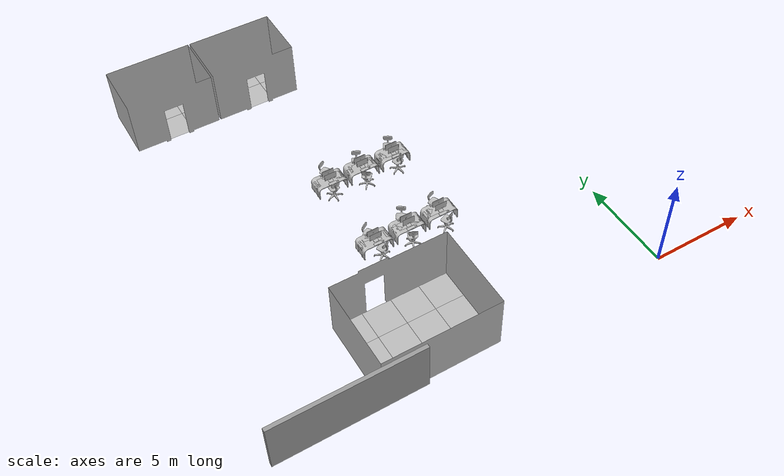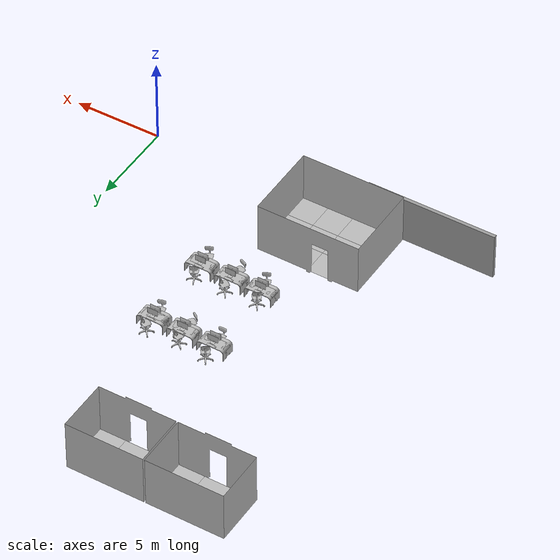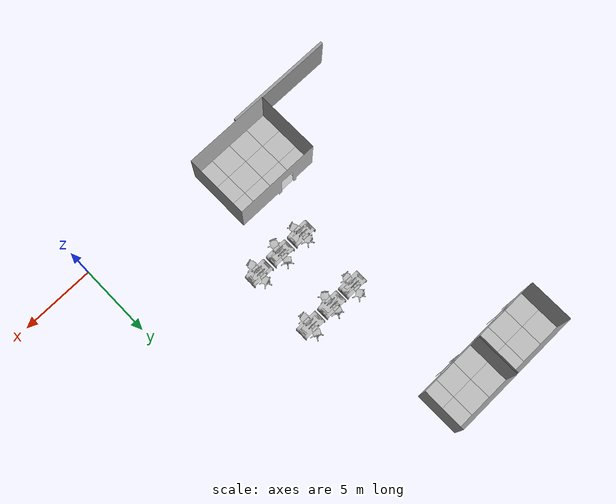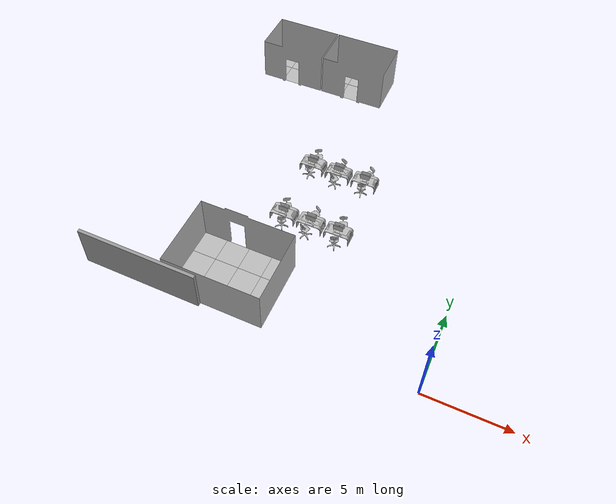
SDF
<sdf version="1.7">
 <world name="default">
  <model name="PrivateOfficeA">
   <static>1</static>
   <pose>-12.2 19.5 0 0 -0 3.14159</pose>
   <link name="link">
    <collision name="box_collision">
     <pose>-0.75 -1.5 1.5 0 -0 0</pose>
     <geometry><box><size>4.5 3 3</size></box></geometry>
    </collision>
    <visual name="visual">
     <geometry>
      <mesh><uri>model://media/meshes/office_small.obj</uri><scale>0.01 0.01 0.01</scale></mesh>
     </geometry>
    </visual>
    <visual name="floor_-1_-1">
     <pose>-1.5 -1.5 0 0 -0 0</pose>
     <geometry><mesh><uri>model://media/meshes/carpet.obj</uri><scale>0.01 0.01 0.01</scale></mesh></geometry>
    </visual>
    <visual name="floor_-1_0">
     <pose>-1.5 0 0 0 -0 0</pose>
     <geometry><mesh><uri>model://media/meshes/carpet.obj</uri><scale>0.01 0.01 0.01</scale></mesh></geometry>
    </visual>
    <visual name="floor_0_-1">
     <pose>0 -1.5 0 0 -0 0</pose>
     <geometry><mesh><uri>model://media/meshes/carpet.obj</uri><scale>0.01 0.01 0.01</scale></mesh></geometry>
    </visual>
    <visual name="floor_0_0">
     <geometry><mesh><uri>model://media/meshes/carpet.obj</uri><scale>0.01 0.01 0.01</scale></mesh></geometry>
    </visual>
    <visual name="floor_1_-1">
     <pose>1.5 -1.5 0 0 -0 0</pose>
     <geometry><mesh><uri>model://media/meshes/carpet.obj</uri><scale>0.01 0.01 0.01</scale></mesh></geometry>
    </visual>
    <visual name="floor_1_0">
     <pose>1.5 0 0 0 -0 0</pose>
     <geometry><mesh><uri>model://media/meshes/carpet.obj</uri><scale>0.01 0.01 0.01</scale></mesh></geometry>
    </visual>
   </link>
  </model>
  <model name="PrivateOfficeB">
   <static>1</static>
   <pose>-16.8 19.5 0 0 -0 3.14159</pose>
   <link name="link">
    <collision name="box_collision">
     <pose>-0.75 -1.5 1.5 0 -0 0</pose>
     <geometry><box><size>4.5 3 3</size></box></geometry>
    </collision>
    <visual name="visual">
     <geometry>
      <mesh><uri>model://media/meshes/office_small.obj</uri><scale>0.01 0.01 0.01</scale></mesh>
     </geometry>
    </visual>
    <visual name="floor_-1_-1">
     <pose>-1.5 -1.5 0 0 -0 0</pose>
     <geometry><mesh><uri>model://media/meshes/carpet.obj</uri><scale>0.01 0.01 0.01</scale></mesh></geometry>
    </visual>
    <visual name="floor_-1_0">
     <pose>-1.5 0 0 0 -0 0</pose>
     <geometry><mesh><uri>model://media/meshes/carpet.obj</uri><scale>0.01 0.01 0.01</scale></mesh></geometry>
    </visual>
    <visual name="floor_0_-1">
     <pose>0 -1.5 0 0 -0 0</pose>
     <geometry><mesh><uri>model://media/meshes/carpet.obj</uri><scale>0.01 0.01 0.01</scale></mesh></geometry>
    </visual>
    <visual name="floor_0_0">
     <geometry><mesh><uri>model://media/meshes/carpet.obj</uri><scale>0.01 0.01 0.01</scale></mesh></geometry>
    </visual>
    <visual name="floor_1_-1">
     <pose>1.5 -1.5 0 0 -0 0</pose>
     <geometry><mesh><uri>model://media/meshes/carpet.obj</uri><scale>0.01 0.01 0.01</scale></mesh></geometry>
    </visual>
    <visual name="floor_1_0">
     <pose>1.5 0 0 0 -0 0</pose>
     <geometry><mesh><uri>model://media/meshes/carpet.obj</uri><scale>0.01 0.01 0.01</scale></mesh></geometry>
    </visual>
   </link>
  </model>
  <model name="PrivateMeetingRoomC">
   <static>1</static>
   <pose>-12 4.5 0 0 -0 0</pose>
   <link name="link">
    <collision name="box_collision">
     <pose>0 -2.25 1.5 0 -0 0</pose>
     <geometry><box><size>6 4.5 3</size></box></geometry>
    </collision>
    <visual name="visual">
     <geometry>
      <mesh><uri>model://media/meshes/meeting_room_small.obj</uri><scale>0.01 0.01 0.01</scale></mesh>
     </geometry>
    </visual>
    <visual name="floor_-1_-2">
     <pose>-1.5 -3 0 0 -0 0</pose>
     <geometry><mesh><uri>model://media/meshes/carpet.obj</uri><scale>0.01 0.01 0.01</scale></mesh></geometry>
    </visual>
    <visual name="floor_-1_-1">
     <pose>-1.5 -1.5 0 0 -0 0</pose>
     <geometry><mesh><uri>model://media/meshes/carpet.obj</uri><scale>0.01 0.01 0.01</scale></mesh></geometry>
    </visual>
    <visual name="floor_-1_0">
     <pose>-1.5 0 0 0 -0 0</pose>
     <geometry><mesh><uri>model://media/meshes/carpet.obj</uri><scale>0.01 0.01 0.01</scale></mesh></geometry>
    </visual>
    <visual name="floor_0_-2">
     <pose>0 -3 0 0 -0 0</pose>
     <geometry><mesh><uri>model://media/meshes/carpet.obj</uri><scale>0.01 0.01 0.01</scale></mesh></geometry>
    </visual>
    <visual name="floor_0_-1">
     <pose>0 -1.5 0 0 -0 0</pose>
     <geometry><mesh><uri>model://media/meshes/carpet.obj</uri><scale>0.01 0.01 0.01</scale></mesh></geometry>
    </visual>
    <visual name="floor_0_0">
     <geometry><mesh><uri>model://media/meshes/carpet.obj</uri><scale>0.01 0.01 0.01</scale></mesh></geometry>
    </visual>
    <visual name="floor_1_-2">
     <pose>1.5 -3 0 0 -0 0</pose>
     <geometry><mesh><uri>model://media/meshes/carpet.obj</uri><scale>0.01 0.01 0.01</scale></mesh></geometry>
    </visual>
    <visual name="floor_1_-1">
     <pose>1.5 -1.5 0 0 -0 0</pose>
     <geometry><mesh><uri>model://media/meshes/carpet.obj</uri><scale>0.01 0.01 0.01</scale></mesh></geometry>
    </visual>
    <visual name="floor_1_0">
     <pose>1.5 0 0 0 -0 0</pose>
     <geometry><mesh><uri>model://media/meshes/carpet.obj</uri><scale>0.01 0.01 0.01</scale></mesh></geometry>
    </visual>
    <visual name="floor_2_-2">
     <pose>3 -3 0 0 -0 0</pose>
     <geometry><mesh><uri>model://media/meshes/carpet.obj</uri><scale>0.01 0.01 0.01</scale></mesh></geometry>
    </visual>
    <visual name="floor_2_-1">
     <pose>3 -1.5 0 0 -0 0</pose>
     <geometry><mesh><uri>model://media/meshes/carpet.obj</uri><scale>0.01 0.01 0.01</scale></mesh></geometry>
    </visual>
    <visual name="floor_2_0">
     <pose>3 0 0 0 -0 0</pose>
     <geometry><mesh><uri>model://media/meshes/carpet.obj</uri><scale>0.01 0.01 0.01</scale></mesh></geometry>
    </visual>
   </link>
  </model>
  <model name="PrivateCubicle_34">
   <static>1</static>
   <pose>-12 7.5 0 0 -0 0</pose>
   <frame name="desk_24::__model__" attached_to="desk_24::link">
    <pose relative_to="__model__">0.884 0.1 0.1 0 -0 0</pose>
   </frame>
   <static>1</static>
   <link name="desk_24::link">
    <visual name="visual">
     <geometry><mesh><uri>model://desk/meshes/desk.obj</uri><scale>0.001 0.001 0.001</scale></mesh></geometry>
    </visual>
    <pose relative_to="desk_24::__model__">0 0 0 0 -0 0</pose>
   </link>
   <link name="computer_24">
    <pose>0.884 0.15 0.78 0 -0 3.14159</pose>
    <visual name="monitor">
     <geometry>
      <mesh><uri>model://computer/meshes/computer_monitor.obj</uri><scale>0.01 0.01 0.01</scale></mesh>
     </geometry>
    </visual>
   </link>
   <link name="chair_24">
    <pose>0.845376 0.537594 0 0 -0 0.594898</pose>
    <visual name="visual">
     <geometry>
      <mesh><uri>model://office_chair/meshes/office_chair.dae</uri><scale>1.4 1.4 1.4</scale></mesh>
     </geometry>
    </visual>
   </link>
   <frame name="desk_25::__model__" attached_to="desk_25::link">
    <pose relative_to="__model__">0.884 -0.1 0.1 0 -0 3.14159</pose>
   </frame>
   <static>1</static>
   <link name="desk_25::link">
    <visual name="visual">
     <geometry><mesh><uri>model://desk/meshes/desk.obj</uri><scale>0.001 0.001 0.001</scale></mesh></geometry>
    </visual>
    <pose relative_to="desk_25::__model__">0 0 0 0 -0 0</pose>
   </link>
   <link name="computer_25">
    <pose>0.884 -0.15 0.78 0 -0 0</pose>
    <visual name="monitor">
     <geometry>
      <mesh><uri>model://computer/meshes/computer_monitor.obj</uri><scale>0.01 0.01 0.01</scale></mesh>
     </geometry>
    </visual>
   </link>
   <link name="chair_25">
    <pose>0.97811 -0.581262 0 0 -0 -2.72335</pose>
    <visual name="visual">
     <geometry>
      <mesh><uri>model://office_chair/meshes/office_chair.dae</uri><scale>1.4 1.4 1.4</scale></mesh>
     </geometry>
    </visual>
   </link>
   <frame name="desk_26::__model__" attached_to="desk_26::link">
    <pose relative_to="__model__">2.684 0.1 0.1 0 -0 0</pose>
   </frame>
   <static>1</static>
   <link name="desk_26::link">
    <visual name="visual">
     <geometry><mesh><uri>model://desk/meshes/desk.obj</uri><scale>0.001 0.001 0.001</scale></mesh></geometry>
    </visual>
    <pose relative_to="desk_26::__model__">0 0 0 0 -0 0</pose>
   </link>
   <link name="computer_26">
    <pose>2.684 0.15 0.78 0 -0 3.14159</pose>
    <visual name="monitor">
     <geometry>
      <mesh><uri>model://computer/meshes/computer_monitor.obj</uri><scale>0.01 0.01 0.01</scale></mesh>
     </geometry>
    </visual>
   </link>
   <link name="chair_26">
    <pose>2.71102 0.631009 0 0 0 -0.62831</pose>
    <visual name="visual">
     <geometry>
      <mesh><uri>model://office_chair/meshes/office_chair.dae</uri><scale>1.4 1.4 1.4</scale></mesh>
     </geometry>
    </visual>
   </link>
   <frame name="desk_27::__model__" attached_to="desk_27::link">
    <pose relative_to="__model__">2.684 -0.1 0.1 0 -0 3.14159</pose>
   </frame>
   <static>1</static>
   <link name="desk_27::link">
    <visual name="visual">
     <geometry><mesh><uri>model://desk/meshes/desk.obj</uri><scale>0.001 0.001 0.001</scale></mesh></geometry>
    </visual>
    <pose relative_to="desk_27::__model__">0 0 0 0 -0 0</pose>
   </link>
   <link name="computer_27">
    <pose>2.684 -0.15 0.78 0 -0 0</pose>
    <visual name="monitor">
     <geometry>
      <mesh><uri>model://computer/meshes/computer_monitor.obj</uri><scale>0.01 0.01 0.01</scale></mesh>
     </geometry>
    </visual>
   </link>
   <link name="chair_27">
    <pose>2.58969 -0.663146 0 0 -0 2.74989</pose>
    <visual name="visual">
     <geometry>
      <mesh><uri>model://office_chair/meshes/office_chair.dae</uri><scale>1.4 1.4 1.4</scale></mesh>
     </geometry>
    </visual>
   </link>
   <frame name="desk_28::__model__" attached_to="desk_28::link">
    <pose relative_to="__model__">4.484 0.1 0.1 0 -0 0</pose>
   </frame>
   <static>1</static>
   <link name="desk_28::link">
    <visual name="visual">
     <geometry><mesh><uri>model://desk/meshes/desk.obj</uri><scale>0.001 0.001 0.001</scale></mesh></geometry>
    </visual>
    <pose relative_to="desk_28::__model__">0 0 0 0 -0 0</pose>
   </link>
   <link name="computer_28">
    <pose>4.484 0.15 0.78 0 -0 3.14159</pose>
    <visual name="monitor">
     <geometry>
      <mesh><uri>model://computer/meshes/computer_monitor.obj</uri><scale>0.01 0.01 0.01</scale></mesh>
     </geometry>
    </visual>
   </link>
   <link name="chair_28">
    <pose>4.54981 0.614352 0 0 -0 0.39349</pose>
    <visual name="visual">
     <geometry>
      <mesh><uri>model://office_chair/meshes/office_chair.dae</uri><scale>1.4 1.4 1.4</scale></mesh>
     </geometry>
    </visual>
   </link>
   <frame name="desk_29::__model__" attached_to="desk_29::link">
    <pose relative_to="__model__">4.484 -0.1 0.1 0 -0 3.14159</pose>
   </frame>
   <static>1</static>
   <link name="desk_29::link">
    <visual name="visual">
     <geometry><mesh><uri>model://desk/meshes/desk.obj</uri><scale>0.001 0.001 0.001</scale></mesh></geometry>
    </visual>
    <pose relative_to="desk_29::__model__">0 0 0 0 -0 0</pose>
   </link>
   <link name="computer_29">
    <pose>4.484 -0.15 0.78 0 -0 0</pose>
    <visual name="monitor">
     <geometry>
      <mesh><uri>model://computer/meshes/computer_monitor.obj</uri><scale>0.01 0.01 0.01</scale></mesh>
     </geometry>
    </visual>
   </link>
   <link name="chair_29">
    <pose>4.48493 -0.658465 0 0 -0 -2.75234</pose>
    <visual name="visual">
     <geometry>
      <mesh><uri>model://office_chair/meshes/office_chair.dae</uri><scale>1.4 1.4 1.4</scale></mesh>
     </geometry>
    </visual>
   </link>
  </model>
  <model name="PrivateCubicle_35">
   <static>1</static>
   <pose>-12 12 0 0 -0 0</pose>
   <frame name="desk_24::__model__" attached_to="desk_24::link">
    <pose relative_to="__model__">0.884 0.1 0.1 0 -0 0</pose>
   </frame>
   <static>1</static>
   <link name="desk_24::link">
    <visual name="visual">
     <geometry><mesh><uri>model://desk/meshes/desk.obj</uri><scale>0.001 0.001 0.001</scale></mesh></geometry>
    </visual>
    <pose relative_to="desk_24::__model__">0 0 0 0 -0 0</pose>
   </link>
   <link name="computer_24">
    <pose>0.884 0.15 0.78 0 -0 3.14159</pose>
    <visual name="monitor">
     <geometry>
      <mesh><uri>model://computer/meshes/computer_monitor.obj</uri><scale>0.01 0.01 0.01</scale></mesh>
     </geometry>
    </visual>
   </link>
   <link name="chair_24">
    <pose>0.980494 0.680317 0 0 -0 0.55675</pose>
    <visual name="visual">
     <geometry>
      <mesh><uri>model://office_chair/meshes/office_chair.dae</uri><scale>1.4 1.4 1.4</scale></mesh>
     </geometry>
    </visual>
   </link>
   <frame name="desk_25::__model__" attached_to="desk_25::link">
    <pose relative_to="__model__">0.884 -0.1 0.1 0 -0 3.14159</pose>
   </frame>
   <static>1</static>
   <link name="desk_25::link">
    <visual name="visual">
     <geometry><mesh><uri>model://desk/meshes/desk.obj</uri><scale>0.001 0.001 0.001</scale></mesh></geometry>
    </visual>
    <pose relative_to="desk_25::__model__">0 0 0 0 -0 0</pose>
   </link>
   <link name="computer_25">
    <pose>0.884 -0.15 0.78 0 -0 0</pose>
    <visual name="monitor">
     <geometry>
      <mesh><uri>model://computer/meshes/computer_monitor.obj</uri><scale>0.01 0.01 0.01</scale></mesh>
     </geometry>
    </visual>
   </link>
   <link name="chair_25">
    <pose>0.836786 -0.527657 0 0 -0 -3.12358</pose>
    <visual name="visual">
     <geometry>
      <mesh><uri>model://office_chair/meshes/office_chair.dae</uri><scale>1.4 1.4 1.4</scale></mesh>
     </geometry>
    </visual>
   </link>
   <frame name="desk_26::__model__" attached_to="desk_26::link">
    <pose relative_to="__model__">2.684 0.1 0.1 0 -0 0</pose>
   </frame>
   <static>1</static>
   <link name="desk_26::link">
    <visual name="visual">
     <geometry><mesh><uri>model://desk/meshes/desk.obj</uri><scale>0.001 0.001 0.001</scale></mesh></geometry>
    </visual>
    <pose relative_to="desk_26::__model__">0 0 0 0 -0 0</pose>
   </link>
   <link name="computer_26">
    <pose>2.684 0.15 0.78 0 -0 3.14159</pose>
    <visual name="monitor">
     <geometry>
      <mesh><uri>model://computer/meshes/computer_monitor.obj</uri><scale>0.01 0.01 0.01</scale></mesh>
     </geometry>
    </visual>
   </link>
   <link name="chair_26">
    <pose>2.69489 0.50585 0 0 0 -0.440336</pose>
    <visual name="visual">
     <geometry>
      <mesh><uri>model://office_chair/meshes/office_chair.dae</uri><scale>1.4 1.4 1.4</scale></mesh>
     </geometry>
    </visual>
   </link>
   <frame name="desk_27::__model__" attached_to="desk_27::link">
    <pose relative_to="__model__">2.684 -0.1 0.1 0 -0 3.14159</pose>
   </frame>
   <static>1</static>
   <link name="desk_27::link">
    <visual name="visual">
     <geometry><mesh><uri>model://desk/meshes/desk.obj</uri><scale>0.001 0.001 0.001</scale></mesh></geometry>
    </visual>
    <pose relative_to="desk_27::__model__">0 0 0 0 -0 0</pose>
   </link>
   <link name="computer_27">
    <pose>2.684 -0.15 0.78 0 -0 0</pose>
    <visual name="monitor">
     <geometry>
      <mesh><uri>model://computer/meshes/computer_monitor.obj</uri><scale>0.01 0.01 0.01</scale></mesh>
     </geometry>
    </visual>
   </link>
   <link name="chair_27">
    <pose>2.6384 -0.655468 0 0 -0 2.48402</pose>
    <visual name="visual">
     <geometry>
      <mesh><uri>model://office_chair/meshes/office_chair.dae</uri><scale>1.4 1.4 1.4</scale></mesh>
     </geometry>
    </visual>
   </link>
   <frame name="desk_28::__model__" attached_to="desk_28::link">
    <pose relative_to="__model__">4.484 0.1 0.1 0 -0 0</pose>
   </frame>
   <static>1</static>
   <link name="desk_28::link">
    <visual name="visual">
     <geometry><mesh><uri>model://desk/meshes/desk.obj</uri><scale>0.001 0.001 0.001</scale></mesh></geometry>
    </visual>
    <pose relative_to="desk_28::__model__">0 0 0 0 -0 0</pose>
   </link>
   <link name="computer_28">
    <pose>4.484 0.15 0.78 0 -0 3.14159</pose>
    <visual name="monitor">
     <geometry>
      <mesh><uri>model://computer/meshes/computer_monitor.obj</uri><scale>0.01 0.01 0.01</scale></mesh>
     </geometry>
    </visual>
   </link>
   <link name="chair_28">
    <pose>4.57185 0.595974 0 0 0 -0.54661</pose>
    <visual name="visual">
     <geometry>
      <mesh><uri>model://office_chair/meshes/office_chair.dae</uri><scale>1.4 1.4 1.4</scale></mesh>
     </geometry>
    </visual>
   </link>
   <frame name="desk_29::__model__" attached_to="desk_29::link">
    <pose relative_to="__model__">4.484 -0.1 0.1 0 -0 3.14159</pose>
   </frame>
   <static>1</static>
   <link name="desk_29::link">
    <visual name="visual">
     <geometry><mesh><uri>model://desk/meshes/desk.obj</uri><scale>0.001 0.001 0.001</scale></mesh></geometry>
    </visual>
    <pose relative_to="desk_29::__model__">0 0 0 0 -0 0</pose>
   </link>
   <link name="computer_29">
    <pose>4.484 -0.15 0.78 0 -0 0</pose>
    <visual name="monitor">
     <geometry>
      <mesh><uri>model://computer/meshes/computer_monitor.obj</uri><scale>0.01 0.01 0.01</scale></mesh>
     </geometry>
    </visual>
   </link>
   <link name="chair_29">
    <pose>4.45967 -0.584776 0 0 -0 -2.91</pose>
    <visual name="visual">
     <geometry>
      <mesh><uri>model://office_chair/meshes/office_chair.dae</uri><scale>1.4 1.4 1.4</scale></mesh>
     </geometry>
    </visual>
   </link>
  </model>
  <model name="grey_wall_0">
   <static>1</static>
   <link name="link">
    <pose>0 0 1.4 0 -0 0</pose>
    <collision name="collision"><geometry><box><size>7.5 0.2 2.8</size></box></geometry></collision>
    <visual name="visual">
     <cast_shadows>0</cast_shadows>
     <geometry><box><size>7.5 0.2 2.8</size></box></geometry>
     <material>
      <script>
       <uri>model://grey_wall/materials/scripts</uri>
       <uri>model://grey_wall/materials/textures</uri>
       <name>vrc/grey_wall</name>
      </script>
     </material>
    </visual>
   </link>
   <pose>-16.5666 -0.129536 0 0 -0 0</pose>
  </model>
 </world>
</sdf>
